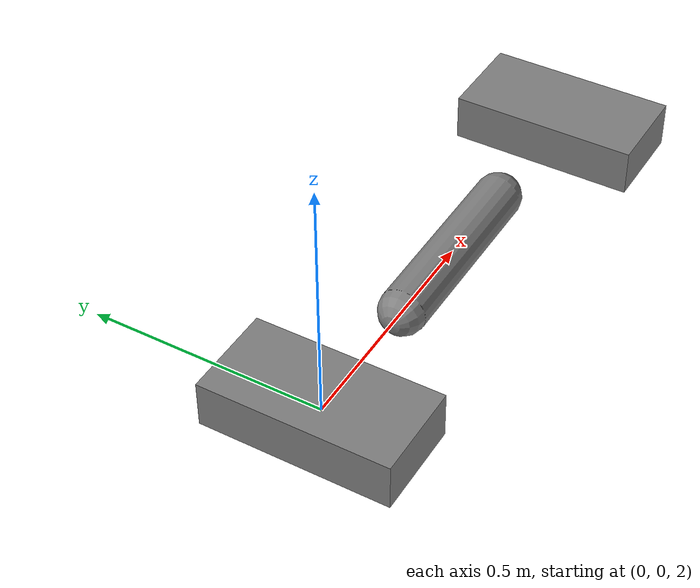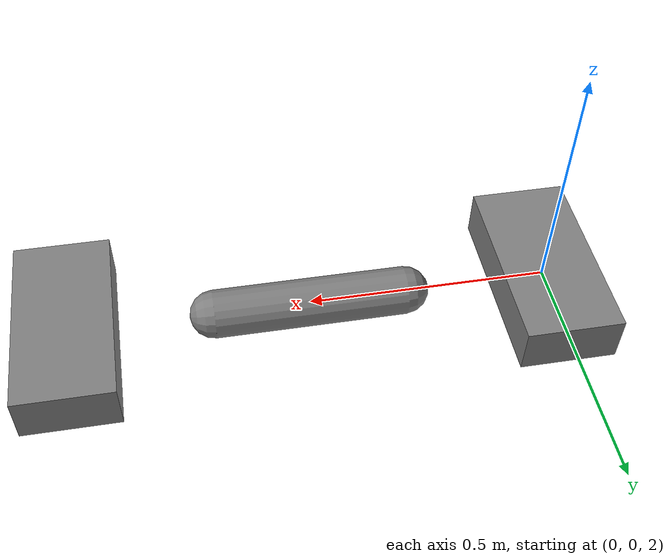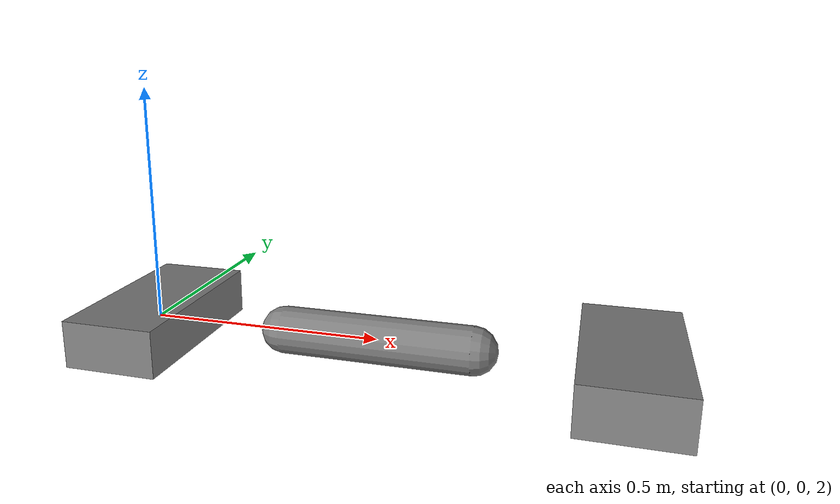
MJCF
<mujoco>

<worldbody>
    <!-- Define the body for the first module -->
		<body name="module1_body" pos="0 0 2">
            <joint name="module1_joint" type="free" />
			<geom name="module1_geom" type="box" size="0.1 0.2 0.05" rgba="0.5 0.5 0.5 1" />
		</body>
		<!-- Define the body for the second module -->
		<body name="module2_body" pos="1 0 2">
            <joint name="module2_joint" type="free" />
			<geom name="module2_geom" type="box" size="0.1 0.2 0.05" rgba="0.5 0.5 0.5 1" />
		</body>
		<!-- Define the arm connecting the two modules -->
		<body name="arm_body" pos=".5 0 2">
			<joint name="arm_joint" type="hinge" pos="0 0 0.1" axis="1 0 0" />
			<geom name="arm_geom" type="capsule" size="0.05 0.2" rgba="0.5 0.5 0.5 1" euler="0 90 0" />
		</body>
</worldbody>
</mujoco>
